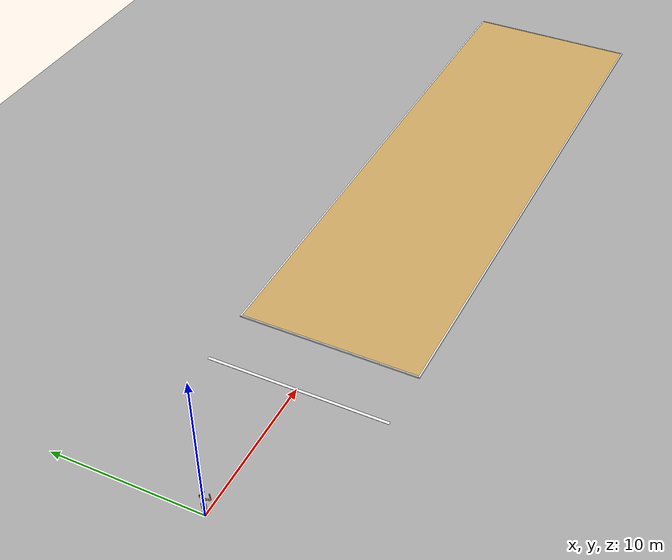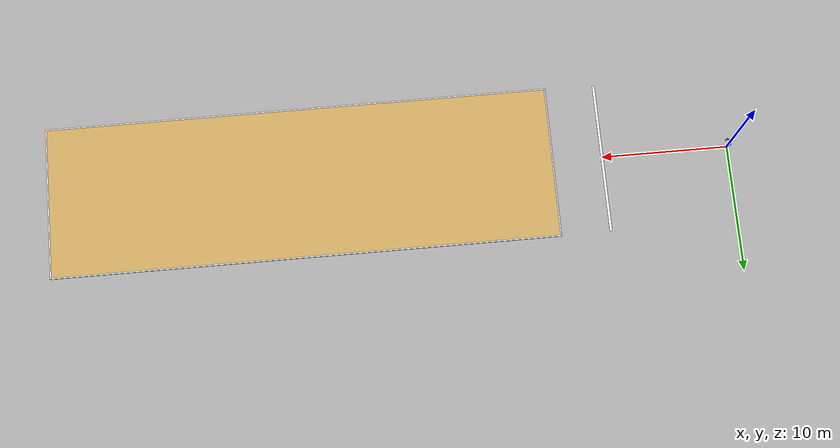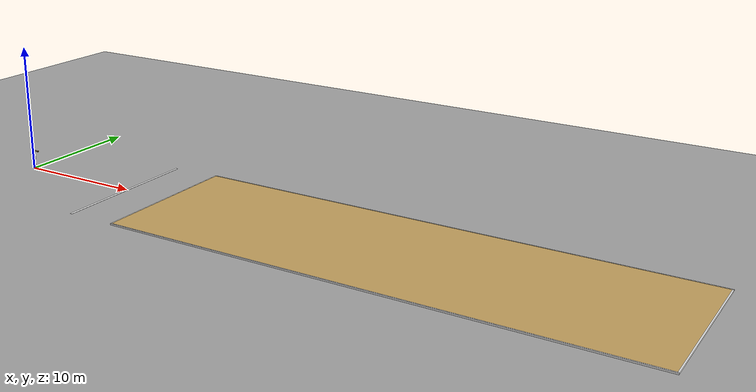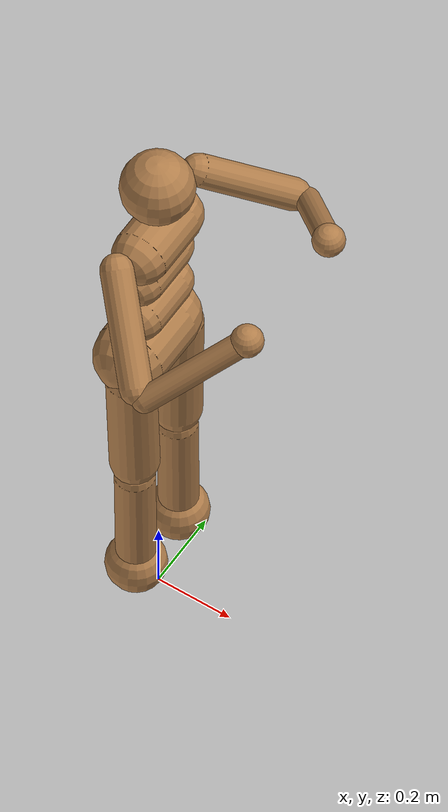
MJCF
<mujoco model="longjump humanoid">
  <option timestep="0.002" iterations="2" ls_iterations="8" solver="Newton">
      <flag eulerdamp="disable"/>
  </option>

  <statistic center="0 0 0.1" extent="10.0" meansize="0.04"/>

  <visual>
    <rgba force="1 0 0 1" haze = "0.71 0.71 0.71 0.51" fog="0.71 0.71 0.71 1"/>
    <quality shadowsize="8192" offsamples="8" numslices="32" numstacks="24" numquads="16"/>
    <global azimuth="140" elevation="-20" offwidth="1920" offheight="1080"/>
  </visual>

  <asset>
    <texture type="skybox" builtin="gradient" rgb1="0.71 0.71 0.71" rgb2="0.71 0.71 0.71" width="800" height="800"/>
    <texture name="grey_squares" builtin="checker" height="800" width="800" rgb1="0.71 0.71 0.71" rgb2="0.71 0.71 0.71" type="2d" mark="edge" markrgb="1 1 1"/>
    <texture name="sand" builtin="flat" width="1024" height="1024" rgb1="0.851 0.698 0.412" mark="random" markrgb="0.85 0.75 0.4" random="0.11" />

    <material name="body" rgba=".7 .5 .3 1" specular="0.9" shininess="0.8"/>
    <material name="floor" reflectance="0.2" texrepeat="1 1" texuniform="true" texture="grey_squares"/>
    <material name="sand" texture="sand" texrepeat="100 100" texuniform="false" rgba="1 1 1 1"/>
  </asset>

  <default>
    <geom conaffinity="0" contype="0" condim="3"/>
    <motor ctrllimited="true" ctrlrange="-.4 .4"/>
    <joint armature="1" damping="1" limited="true"/>
    <default class="humanoid">
      <geom type="capsule" material="body"/>
    </default>
  </default>

  <worldbody>
    <geom name="floor" pos="0 0 0" size="100 100 0.010" type="plane" material="floor"/>

    <!-- Humanoid -->
    <body name="humanoid" childclass="humanoid" pos="0 0 1.40">
      <light name="tracking_light" pos="0 0 7" dir="0 0 -1" specular="0.8 0.8 0.8" mode="trackcom"/>
      <camera name="cam_default" mode="trackcom" pos="-1.083 -3.284 0.297" xyaxes="0.944 -0.331 -0.000 0.087 0.247 0.965"/>
      <site name="humanoid" size="0.01" pos="-0 0 -0"/>
      <joint name="humanoid_root" type="free" armature="0" damping="0" limited="false" pos="0 0 0" stiffness="0"/>
      <geom name="humanoid_torso" fromto="0 -.07 0 0 .07 0" size="0.07" type="capsule"/>
      <geom name="humanoid_head" pos="0 0 .19" size=".09" type="sphere"/>
      <geom name="humanoid_uwaist" fromto="-.01 -.06 -.12 -.01 .06 -.12" size="0.06" type="capsule"/>
      <body name="humanoid_lwaist" pos="-.01 0 -0.260" quat="1.000 0 -0.002 0">
        <geom name="humanoid_lwaist" fromto="0 -.06 0 0 .06 0" size="0.06" type="capsule"/>
        <joint name="humanoid_abdomen_z" armature="0.02" axis="0 0 1" damping="5" pos="0 0 0.065" range="-45 45" stiffness="20" type="hinge"/>
        <joint name="humanoid_abdomen_y" armature="0.02" axis="0 1 0" damping="5" pos="0 0 0.065" range="-75 30" stiffness="10" type="hinge"/>
        <body name="humanoid_pelvis" pos="0 0 -0.165" quat="1.000 0 -0.002 0">
          <joint name="humanoid_abdomen_x" armature="0.02" axis="1 0 0" damping="5" pos="0 0 0.1" range="-35 35" stiffness="10" type="hinge"/>
          <geom name="humanoid_butt" fromto="-.02 -.07 0 -.02 .07 0" size="0.09" type="capsule"/>
          <body name="humanoid_right_thigh" pos="0 -0.1 -0.04">
            <joint name="humanoid_right_hip_x" armature="0.01" axis="1 0 0" damping="5" pos="0 0 0" range="-25 5" stiffness="10" type="hinge"/>
            <joint name="humanoid_right_hip_z" armature="0.01" axis="0 0 1" damping="5" pos="0 0 0" range="-60 35" stiffness="10" type="hinge"/>
            <joint name="humanoid_right_hip_y" armature="0.0080" axis="0 1 0" damping="5" pos="0 0 0" range="-110 20" stiffness="20" type="hinge"/>
            <geom name="humanoid_right_thigh" fromto="0 0 0 0 0.01 -.34" size="0.06" type="capsule"/>
            <body name="humanoid_right_shin" pos="0 0.01 -0.403">
              <joint name="humanoid_right_knee" armature="0.0060" axis="0 -1 0" pos="0 0 .02" range="-160 -2" type="hinge"/>
              <geom name="humanoid_right_shin" fromto="0 0 0 0 0 -.3" size="0.049" type="capsule"/>
              <body name="humanoid_right_foot" pos="0 0 -0.45">
                <geom name="humanoid_right_foot" pos="0 0 0.1" size="0.075" type="sphere"/>
                <site name="humanoid_right_foot" size="0.01" pos="0 0 0.1"/>
              </body>
            </body>
          </body>
          <body name="humanoid_left_thigh" pos="0 0.1 -0.04">
            <joint name="humanoid_left_hip_x" armature="0.01" axis="-1 0 0" damping="5" pos="0 0 0" range="-25 5" stiffness="10" type="hinge"/>
            <joint name="humanoid_left_hip_z" armature="0.01" axis="0 0 -1" damping="5" pos="0 0 0" range="-60 35" stiffness="10" type="hinge"/>
            <joint name="humanoid_left_hip_y" armature="0.01" axis="0 1 0" damping="5" pos="0 0 0" range="-110 20" stiffness="20" type="hinge"/>
            <geom name="humanoid_left_thigh" fromto="0 0 0 0 -0.01 -.34" size="0.06" type="capsule"/>
            <body name="humanoid_left_shin" pos="0 -0.01 -0.403">
              <joint name="humanoid_left_knee" armature="0.0060" axis="0 -1 0" pos="0 0 .02" range="-160 -2" stiffness="1" type="hinge"/>
              <geom name="humanoid_left_shin" fromto="0 0 0 0 0 -.3" size="0.049" type="capsule"/>
              <body name="humanoid_left_foot" pos="0 0 -0.45">
                <geom name="humanoid_left_foot" type="sphere" size="0.075" pos="0 0 0.1"/>
                <site name="humanoid_left_foot" size="0.01" pos="0 0 0.1"/>
              </body>
            </body>
          </body>
        </body>
      </body>
      <body name="humanoid_right_upper_arm" pos="0 -0.17 0.06">
        <joint name="humanoid_right_shoulder1" armature="0.0068" axis="2 1 1" pos="0 0 0" range="-85 60" stiffness="1" type="hinge"/>
        <joint name="humanoid_right_shoulder2" armature="0.0051" axis="0 -1 1" pos="0 0 0" range="-85 60" stiffness="1" type="hinge"/>
        <geom name="humanoid_right_uarm" fromto="0 0 0 .16 -.16 -.16" size="0.04 0.16" type="capsule"/>
        <body name="humanoid_right_lower_arm" pos=".18 -.18 -.18">
          <joint name="humanoid_right_elbow" armature="0.0028" axis="0 -1 1" pos="0 0 0" range="-90 50" stiffness="0" type="hinge"/>
          <geom name="humanoid_right_larm" fromto="0.01 0.01 0.01 .17 .17 .17" size="0.031" type="capsule"/>
          <geom name="humanoid_right_hand" pos=".18 .18 .18" size="0.04" type="sphere"/>
        </body>
      </body>
      <body name="humanoid_left_upper_arm" pos="0 0.17 0.06">
        <joint name="humanoid_left_shoulder1" armature="0.0068" axis="2 -1 1" pos="0 0 0" range="-60 85" stiffness="1" type="hinge"/>
        <joint name="humanoid_left_shoulder2" armature="0.0051" axis="0 1 1" pos="0 0 0" range="-60 85" stiffness="1" type="hinge"/>
        <geom name="humanoid_left_uarm" fromto="0 0 0 .16 .16 -.16" size="0.04 0.16" type="capsule"/>
        <body name="humanoid_left_lower_arm" pos=".18 .18 -.18">
          <joint name="humanoid_left_elbow" armature="0.0028" axis="0 -1 -1" pos="0 0 0" range="-90 50" stiffness="0" type="hinge"/>
          <geom name="humanoid_left_larm" fromto="0.01 -0.01 0.01 .17 -.17 .17" size="0.031" type="capsule"/>
          <geom name="humanoid_left_hand" pos=".18 -.18 .18" size="0.04" type="sphere"/>
        </body>
      </body>
    </body>

    <geom name="jump_line" type="box" size="0.1 6 0.005" pos="10 0 0.005" rgba="1 1 1 1" />

    <body name="sand_pit" pos="14 0 0">
      <geom name="sand" type="box" size="20 6 0.05" pos="20 0 0.05" material="sand"/>
      <geom name="border_front" type="box" size="0.05 6 0.05" pos="-0.05 0 0.05" rgba="1 1 1 1" />
      <geom name="border_back" type="box" size="0.05 6 0.05" pos="40.05 0 0.05" rgba="1 1 1 1" />
      <geom name="border_left" type="box" size="20.1 0.05 0.05" pos="20 6.05 0.05" rgba="1 1 1 1" />
      <geom name="border_right" type="box" size="20.1 0.05 0.05" pos="20 -6.05 0.05" rgba="1 1 1 1" />
    </body>
  </worldbody>

  <contact>
      <!-- Floor contacts -->
    <pair geom1="humanoid_left_foot" geom2="floor" friction="1 1 0.1 0.1 0.1"/>
    <pair geom1="humanoid_right_foot" geom2="floor" friction="1 1 0.1 0.1 0.1"/>
    <pair geom1="humanoid_torso" geom2="floor" friction="1 1 0.1 0.1 0.1"/>

    <!-- Sand contacts -->
    <pair geom1="humanoid_left_foot" geom2="sand" friction="1 1 0.1 0.1 0.1"/>
    <pair geom1="humanoid_right_foot" geom2="sand" friction="1 1 0.1 0.1 0.1"/>
    <pair geom1="humanoid_torso" geom2="sand" friction="1 1 0.1 0.1 0.1"/>

    <!-- Self contacts -->
    <pair geom1="humanoid_right_foot" geom2="humanoid_left_foot" condim="1"/>
    <pair geom1="humanoid_left_foot" geom2="humanoid_left_thigh" condim="1"/>
    <pair geom1="humanoid_left_foot" geom2="humanoid_butt" condim="1"/>
    <pair geom1="humanoid_left_foot" geom2="humanoid_right_shin" condim="1"/>
    <pair geom1="humanoid_left_foot" geom2="humanoid_right_thigh" condim="1"/>
    <pair geom1="humanoid_right_foot" geom2="humanoid_right_thigh" condim="1"/>
    <pair geom1="humanoid_right_foot" geom2="humanoid_butt" condim="1"/>
    <pair geom1="humanoid_right_foot" geom2="humanoid_left_shin" condim="1"/>
    <pair geom1="humanoid_right_foot" geom2="humanoid_left_thigh" condim="1"/>
    <pair geom1="humanoid_left_shin" geom2="humanoid_right_thigh" condim="1"/>
    <pair geom1="humanoid_right_shin" geom2="humanoid_left_thigh" condim="1"/>
  </contact>

  <actuator>
    <motor gear="100" joint="humanoid_abdomen_y" name="humanoid_abdomen_y"/>
    <motor gear="100" joint="humanoid_abdomen_z" name="humanoid_abdomen_z"/>
    <motor gear="100" joint="humanoid_abdomen_x" name="humanoid_abdomen_x"/>
    <motor gear="100" joint="humanoid_right_hip_x" name="humanoid_right_hip_x"/>
    <motor gear="100" joint="humanoid_right_hip_z" name="humanoid_right_hip_z"/>
    <motor gear="300" joint="humanoid_right_hip_y" name="humanoid_right_hip_y"/>
    <motor gear="200" joint="humanoid_right_knee" name="humanoid_right_knee"/>
    <motor gear="100" joint="humanoid_left_hip_x" name="humanoid_left_hip_x"/>
    <motor gear="100" joint="humanoid_left_hip_z" name="humanoid_left_hip_z"/>
    <motor gear="300" joint="humanoid_left_hip_y" name="humanoid_left_hip_y"/>
    <motor gear="200" joint="humanoid_left_knee" name="humanoid_left_knee"/>
    <motor gear="25" joint="humanoid_right_shoulder1" name="humanoid_right_shoulder1"/>
    <motor gear="25" joint="humanoid_right_shoulder2" name="humanoid_right_shoulder2"/>
    <motor gear="25" joint="humanoid_right_elbow" name="humanoid_right_elbow"/>
    <motor gear="25" joint="humanoid_left_shoulder1" name="humanoid_left_shoulder1"/>
    <motor gear="25" joint="humanoid_left_shoulder2" name="humanoid_left_shoulder2"/>
    <motor gear="25" joint="humanoid_left_elbow" name="humanoid_left_elbow"/>
  </actuator>
</mujoco>
